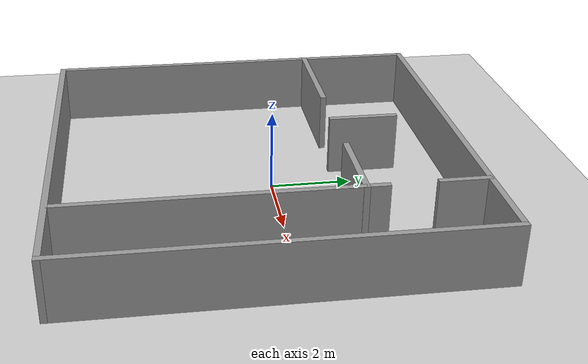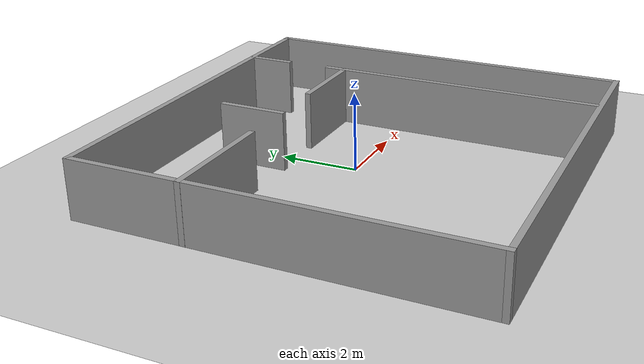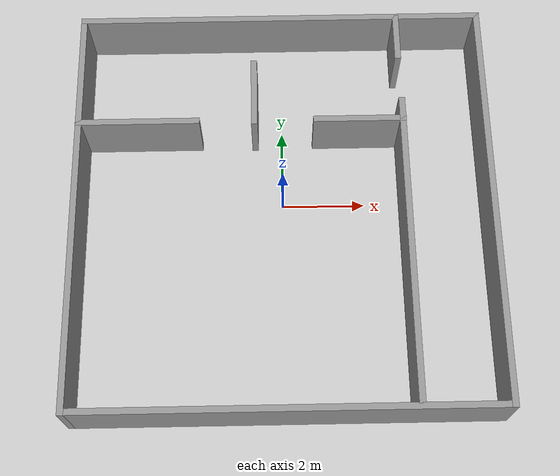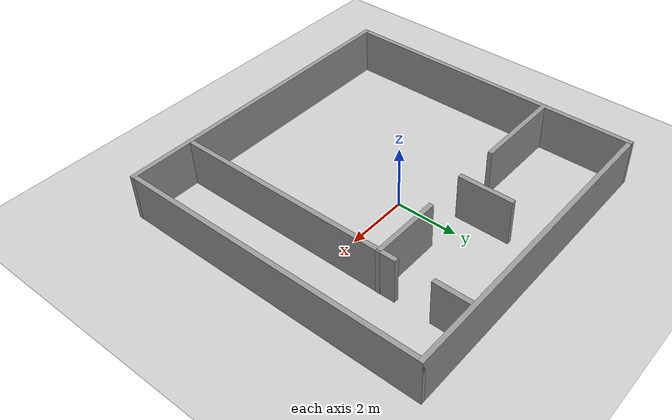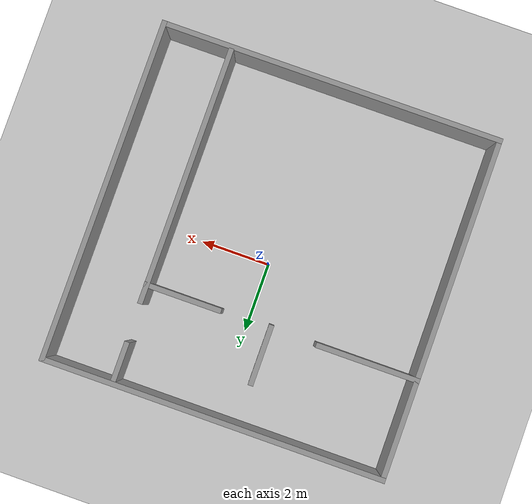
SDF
<?xml version="1.0"?>
<sdf version='1.10'>
  <world name='empty_world'>
    <physics name='1ms' type='ignored'>
      <max_step_size>0.001</max_step_size>
      <real_time_factor>1</real_time_factor>
      <real_time_update_rate>1000</real_time_update_rate>
    </physics>
    <plugin name='gz::sim::systems::Physics' filename='gz-sim-physics-system'/>
    <plugin name='gz::sim::systems::UserCommands' filename='gz-sim-user-commands-system'/>
    <plugin name='gz::sim::systems::SceneBroadcaster' filename='gz-sim-scene-broadcaster-system'/>
    <plugin name='gz::sim::systems::Sensors' filename='gz-sim-sensors-system'>
      <render_engine>ogre2</render_engine>
    </plugin>
    <plugin name='gz::sim::systems::Contact' filename='gz-sim-contact-system'/>
    <gravity>0 0 -9.8000000000000007</gravity>
    <magnetic_field>5.5644999999999998e-06 2.2875799999999999e-05 -4.2388400000000002e-05</magnetic_field>
    <atmosphere type='adiabatic'/>
    <scene>
      <ambient>0.400000006 0.400000006 0.400000006 1</ambient>
      <background>0.699999988 0.699999988 0.699999988 1</background>
      <shadows>true</shadows>
    </scene>
    <model name='ground_plane'>
      <static>true</static>
      <link name='link'>
        <collision name='collision'>
          <geometry>
            <plane>
              <normal>0 0 1</normal>
              <size>100 100</size>
            </plane>
          </geometry>
          <surface>
            <friction>
              <ode/>
            </friction>
            <bounce/>
            <contact/>
          </surface>
        </collision>
        <visual name='visual'>
          <geometry>
            <plane>
              <normal>0 0 1</normal>
              <size>100 100</size>
            </plane>
          </geometry>
          <material>
            <ambient>0.800000012 0.800000012 0.800000012 1</ambient>
            <diffuse>0.800000012 0.800000012 0.800000012 1</diffuse>
            <specular>0.800000012 0.800000012 0.800000012 1</specular>
          </material>
        </visual>
        <pose>0 0 0 0 0 0</pose>
        <inertial>
          <pose>0 0 0 0 0 0</pose>
          <mass>1</mass>
          <inertia>
            <ixx>1</ixx>
            <ixy>0</ixy>
            <ixz>0</ixz>
            <iyy>1</iyy>
            <iyz>0</iyz>
            <izz>1</izz>
          </inertia>
        </inertial>
        <enable_wind>false</enable_wind>
      </link>
      <pose>0 0 0 0 0 0</pose>
      <self_collide>false</self_collide>
    </model>
      <model name='room3'>
    <pose frame=''>0.014 -0.389 0 0 -0 0</pose>
    <link name='Wall_0'>
      <collision name='Wall_0_Collision'>
        <geometry>
          <box>
            <size>10 0.15 1.5</size>
          </box>
        </geometry>
        <pose frame=''>0 0 0.75 0 -0 0</pose>
      </collision>
      <visual name='Wall_0_Visual'>
        <pose frame=''>0 0 0.75 0 -0 0</pose>
        <geometry>
          <box>
            <size>10 0.15 1.5</size>
          </box>
        </geometry>
        <material>
          <script>
            <uri>file://media/materials/scripts/gazebo.material</uri>
            <name>Gazebo/Grey</name>
          </script>
          <ambient>1 1 1 1</ambient>
        </material>
        <meta>
          <layer>0</layer>
        </meta>
      </visual>
      <pose frame=''>0.001 4.925 0 0 -0 0</pose>
    </link>
    <link name='Wall_1'>
      <collision name='Wall_1_Collision'>
        <geometry>
          <box>
            <size>10 0.15 1.5</size>
          </box>
        </geometry>
        <pose frame=''>0 0 0.75 0 -0 0</pose>
      </collision>
      <visual name='Wall_1_Visual'>
        <pose frame=''>0 0 0.75 0 -0 0</pose>
        <geometry>
          <box>
            <size>10 0.15 1.5</size>
          </box>
        </geometry>
        <material>
          <script>
            <uri>file://media/materials/scripts/gazebo.material</uri>
            <name>Gazebo/Grey</name>
          </script>
          <ambient>1 1 1 1</ambient>
        </material>
        <meta>
          <layer>0</layer>
        </meta>
      </visual>
      <pose frame=''>4.926 -0 0 0 -0 -1.5708</pose>
    </link>
    <link name='Wall_11'>
      <collision name='Wall_11_Collision'>
        <geometry>
          <box>
            <size>3 0.15 1.5</size>
          </box>
        </geometry>
        <pose frame=''>0 0 0.75 0 -0 0</pose>
      </collision>
      <visual name='Wall_11_Visual'>
        <pose frame=''>0 0 0.75 0 -0 0</pose>
        <geometry>
          <box>
            <size>3 0.15 1.5</size>
          </box>
        </geometry>
        <material>
          <script>
            <uri>file://media/materials/scripts/gazebo.material</uri>
            <name>Gazebo/Grey</name>
          </script>
          <ambient>1 1 1 1</ambient>
        </material>
        <meta>
          <layer>0</layer>
        </meta>
      </visual>
      <pose frame=''>-3.501 2.069 0 0 -0 0</pose>
    </link>
    <link name='Wall_2'>
      <collision name='Wall_2_Collision'>
        <geometry>
          <box>
            <size>10 0.15 1.5</size>
          </box>
        </geometry>
        <pose frame=''>0 0 0.75 0 -0 0</pose>
      </collision>
      <visual name='Wall_2_Visual'>
        <pose frame=''>0 0 0.75 0 -0 0</pose>
        <geometry>
          <box>
            <size>10 0.15 1.5</size>
          </box>
        </geometry>
        <material>
          <script>
            <uri>file://media/materials/scripts/gazebo.material</uri>
            <name>Gazebo/Grey</name>
          </script>
          <ambient>1 1 1 1</ambient>
        </material>
        <meta>
          <layer>0</layer>
        </meta>
      </visual>
      <pose frame=''>0.001 -4.925 0 0 -0 3.14159</pose>
    </link>
    <link name='Wall_23'>
      <collision name='Wall_23_Collision'>
        <geometry>
          <box>
            <size>7.5 0.15 1.5</size>
          </box>
        </geometry>
        <pose frame=''>0 0 0.75 0 -0 0</pose>
      </collision>
      <visual name='Wall_23_Visual'>
        <pose frame=''>0 0 0.75 0 -0 0</pose>
        <geometry>
          <box>
            <size>7.5 0.15 1.5</size>
          </box>
        </geometry>
        <material>
          <script>
            <uri>file://media/materials/scripts/gazebo.material</uri>
            <name>Gazebo/Grey</name>
          </script>
          <ambient>1 1 1 1</ambient>
        </material>
        <meta>
          <layer>0</layer>
        </meta>
      </visual>
      <pose frame=''>2.919 -1.13 0 0 -0 -1.5708</pose>
    </link>
    <link name='Wall_25'>
      <collision name='Wall_25_Collision'>
        <geometry>
          <box>
            <size>1.25 0.15 1.5</size>
          </box>
        </geometry>
        <pose frame=''>0 0 0.75 0 -0 0</pose>
      </collision>
      <visual name='Wall_25_Visual'>
        <pose frame=''>0 0 0.75 0 -0 0</pose>
        <geometry>
          <box>
            <size>1.25 0.15 1.5</size>
          </box>
        </geometry>
        <material>
          <script>
            <uri>file://media/materials/scripts/gazebo.material</uri>
            <name>Gazebo/Grey</name>
          </script>
          <ambient>1 1 1 1</ambient>
        </material>
        <meta>
          <layer>0</layer>
        </meta>
      </visual>
      <pose frame=''>2.892 4.336 0 0 -0 -1.5708</pose>
    </link>
    <link name='Wall_29'>
      <collision name='Wall_29_Collision'>
        <geometry>
          <box>
            <size>2.25 0.15 1.5</size>
          </box>
        </geometry>
        <pose frame=''>0 0 0.75 0 -0 0</pose>
      </collision>
      <visual name='Wall_29_Visual'>
        <pose frame=''>0 0 0.75 0 -0 0</pose>
        <geometry>
          <box>
            <size>2.25 0.15 1.5</size>
          </box>
        </geometry>
        <material>
          <script>
            <uri>file://media/materials/scripts/gazebo.material</uri>
            <name>Gazebo/Grey</name>
          </script>
          <ambient>1 1 1 1</ambient>
        </material>
        <meta>
          <layer>0</layer>
        </meta>
      </visual>
      <pose frame=''>1.875 2.069 0 0 -0 0</pose>
    </link>
    <link name='Wall_3'>
      <collision name='Wall_3_Collision'>
        <geometry>
          <box>
            <size>10 0.15 1.5</size>
          </box>
        </geometry>
        <pose frame=''>0 0 0.75 0 -0 0</pose>
      </collision>
      <visual name='Wall_3_Visual'>
        <pose frame=''>0 0 0.75 0 -0 0</pose>
        <geometry>
          <box>
            <size>10 0.15 1.5</size>
          </box>
        </geometry>
        <material>
          <script>
            <uri>file://media/materials/scripts/gazebo.material</uri>
            <name>Gazebo/Grey</name>
          </script>
          <ambient>1 1 1 1</ambient>
        </material>
        <meta>
          <layer>0</layer>
        </meta>
      </visual>
      <pose frame=''>-4.924 -0 0 0 -0 1.5708</pose>
    </link>
    <link name='Wall_31'>
      <collision name='Wall_31_Collision'>
        <geometry>
          <box>
            <size>1.75 0.15 1.5</size>
          </box>
        </geometry>
        <pose frame=''>0 0 0.75 0 -0 0</pose>
      </collision>
      <visual name='Wall_31_Visual'>
        <pose frame=''>0 0 0.75 0 -0 0</pose>
        <geometry>
          <box>
            <size>1.75 0.15 1.5</size>
          </box>
        </geometry>
        <material>
          <script>
            <uri>file://media/materials/scripts/gazebo.material</uri>
            <name>Gazebo/Grey</name>
          </script>
          <ambient>1 1 1 1</ambient>
        </material>
        <meta>
          <layer>0</layer>
        </meta>
      </visual>
      <pose frame=''>-0.678 2.836 0 0 -0 -1.5708</pose>
    </link>
    <static>1</static>
  </model>
   <light name='sun' type='directional'>
      <pose>0 0 10 0 0 0</pose>
      <cast_shadows>true</cast_shadows>
      <intensity>1</intensity>
      <direction>-0.5 0.10000000000000001 -0.90000000000000002</direction>
      <diffuse>0.800000012 0.800000012 0.800000012 1</diffuse>
      <specular>0.200000003 0.200000003 0.200000003 1</specular>
      <attenuation>
        <range>1000</range>
        <linear>0.01</linear>
        <constant>0.90000000000000002</constant>
        <quadratic>0.001</quadratic>
      </attenuation>
      <spot>
        <inner_angle>0</inner_angle>
        <outer_angle>0</outer_angle>
        <falloff>0</falloff>
      </spot>
      </light>
  </world>
</sdf>
